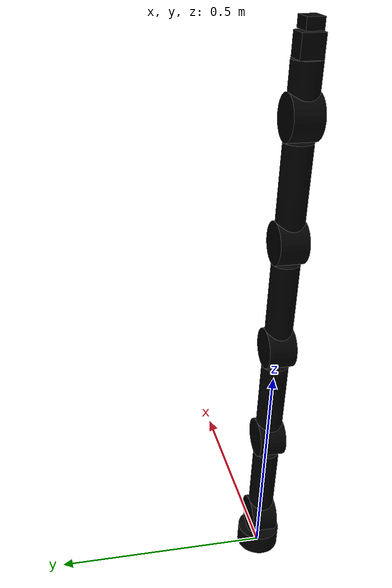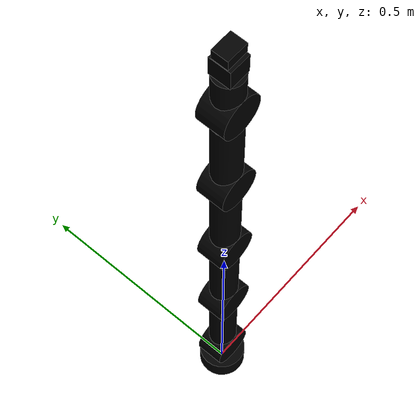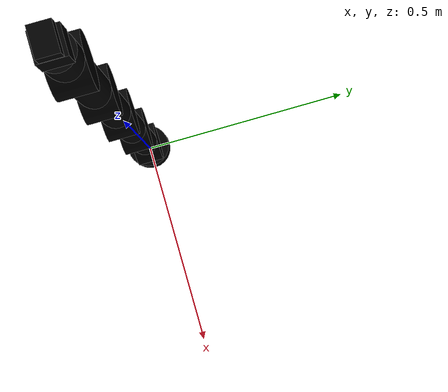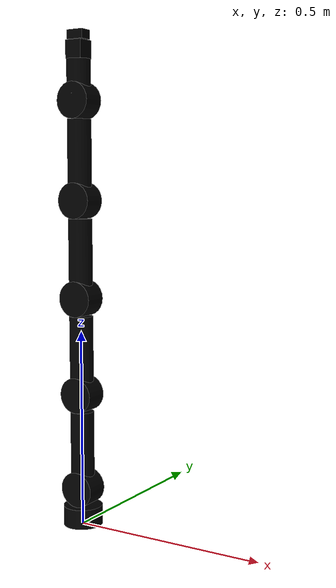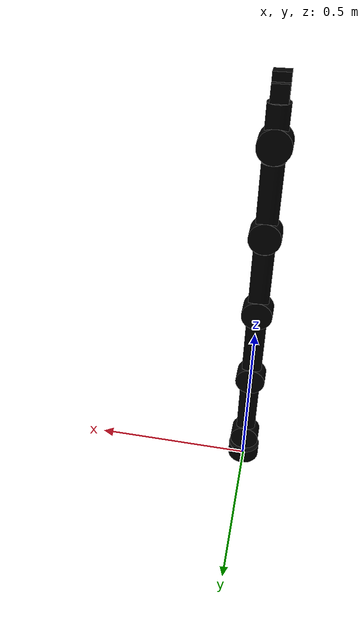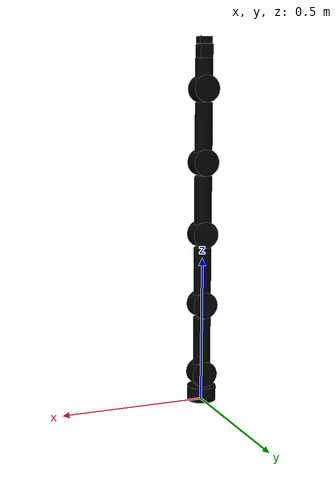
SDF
<?xml version='1.0'?>
<sdf version='1.6'>
  <model name='poke_arm_mod1'>
    <link name='p0_link_clone'>
      <pose frame=''>-0 -0 0.095 0 -0.000119 0</pose>
      <inertial>
        <pose frame=''>0 0 0.1 0 -0 0</pose>
        <mass>0.01</mass>
        <inertia>
          <ixx>0.0001</ixx>
          <ixy>0</ixy>
          <ixz>0</ixz>
          <iyy>0.0001</iyy>
          <iyz>0</iyz>
          <izz>0.0001</izz>
        </inertia>
      </inertial>
      <self_collide>0</self_collide>
      <enable_wind>0</enable_wind>
      <kinematic>0</kinematic>
      <gravity>1</gravity>
      <visual name='p0_link_fixed_joint_lump__p0_joint_v_visual'>
        <pose frame=''>0 0 0 1.57079 -0 0</pose>
        <geometry>
          <cylinder>
            <length>0.06</length>
            <radius>0.045</radius>
          </cylinder>
        </geometry>
        <transparency>0</transparency>
        <cast_shadows>1</cast_shadows>
        <material>
          <shader type='vertex'>
            <normal_map>__default__</normal_map>
          </shader>
          <script>
            <name>ModelPreview_5::p0_link_clone::p0_link_fixed_joint_lump__p0_joint_v_visual_MATERIAL_</name>
          </script>
          <ambient>0 0 0 1</ambient>
          <diffuse>0 0 0 1</diffuse>
          <specular>0 0 0 1</specular>
          <emissive>0 0 0 1</emissive>
        </material>
      </visual>
      <visual name='p0_link_fixed_joint_lump__p0_segmentL_v_visual_1'>
        <pose frame=''>0 0 0.1 0 -0 0</pose>
        <geometry>
          <cylinder>
            <length>0.2</length>
            <radius>0.03</radius>
          </cylinder>
        </geometry>
        <transparency>0</transparency>
        <cast_shadows>1</cast_shadows>
        <material>
          <shader type='vertex'>
            <normal_map>__default__</normal_map>
          </shader>
          <script>
            <name>ModelPreview_5::p0_link_clone::p0_link_fixed_joint_lump__p0_segmentL_v_visual_1_MATERIAL_</name>
          </script>
          <ambient>0 0 0 1</ambient>
          <diffuse>0 0 0 1</diffuse>
          <specular>0 0 0 1</specular>
          <emissive>0 0 0 1</emissive>
        </material>
      </visual>
      <collision name='p0_link_fixed_joint_lump__p0_joint_c_collision'>
        <laser_retro>0</laser_retro>
        <max_contacts>10</max_contacts>
        <pose frame=''>0 0 0 1.57079 -0 0</pose>
        <geometry>
          <cylinder>
            <radius>0.045</radius>
            <length>0.06</length>
          </cylinder>
        </geometry>
        <surface>
          <friction>
            <ode>
              <mu>1</mu>
              <mu2>1</mu2>
              <fdir1>0 0 0</fdir1>
              <slip1>0</slip1>
              <slip2>0</slip2>
            </ode>
            <torsional>
              <coefficient>1</coefficient>
              <patch_radius>0</patch_radius>
              <surface_radius>0</surface_radius>
              <use_patch_radius>1</use_patch_radius>
              <ode>
                <slip>0</slip>
              </ode>
            </torsional>
          </friction>
          <bounce>
            <restitution_coefficient>0</restitution_coefficient>
            <threshold>1e+06</threshold>
          </bounce>
          <contact>
            <collide_without_contact>0</collide_without_contact>
            <collide_without_contact_bitmask>1</collide_without_contact_bitmask>
            <collide_bitmask>1</collide_bitmask>
            <ode>
              <soft_cfm>0</soft_cfm>
              <soft_erp>0.2</soft_erp>
              <kp>1e+13</kp>
              <kd>1</kd>
              <max_vel>0.01</max_vel>
              <min_depth>0</min_depth>
            </ode>
            <bullet>
              <split_impulse>1</split_impulse>
              <split_impulse_penetration_threshold>-0.01</split_impulse_penetration_threshold>
              <soft_cfm>0</soft_cfm>
              <soft_erp>0.2</soft_erp>
              <kp>1e+13</kp>
              <kd>1</kd>
            </bullet>
          </contact>
        </surface>
      </collision>
      <collision name='p0_link_fixed_joint_lump__p0_segmentL_c_collision_1'>
        <laser_retro>0</laser_retro>
        <max_contacts>10</max_contacts>
        <pose frame=''>0 0 0.1 0 -0 0</pose>
        <geometry>
          <cylinder>
            <radius>0.03</radius>
            <length>0.2</length>
          </cylinder>
        </geometry>
        <surface>
          <friction>
            <ode>
              <mu>1</mu>
              <mu2>1</mu2>
              <fdir1>0 0 0</fdir1>
              <slip1>0</slip1>
              <slip2>0</slip2>
            </ode>
            <torsional>
              <coefficient>1</coefficient>
              <patch_radius>0</patch_radius>
              <surface_radius>0</surface_radius>
              <use_patch_radius>1</use_patch_radius>
              <ode>
                <slip>0</slip>
              </ode>
            </torsional>
          </friction>
          <bounce>
            <restitution_coefficient>0</restitution_coefficient>
            <threshold>1e+06</threshold>
          </bounce>
          <contact>
            <collide_without_contact>0</collide_without_contact>
            <collide_without_contact_bitmask>1</collide_without_contact_bitmask>
            <collide_bitmask>1</collide_bitmask>
            <ode>
              <soft_cfm>0</soft_cfm>
              <soft_erp>0.2</soft_erp>
              <kp>1e+13</kp>
              <kd>1</kd>
              <max_vel>0.01</max_vel>
              <min_depth>0</min_depth>
            </ode>
            <bullet>
              <split_impulse>1</split_impulse>
              <split_impulse_penetration_threshold>-0.01</split_impulse_penetration_threshold>
              <soft_cfm>0</soft_cfm>
              <soft_erp>0.2</soft_erp>
              <kp>1e+13</kp>
              <kd>1</kd>
            </bullet>
          </contact>
        </surface>
      </collision>
    </link>
    <link name='p1_link_clone'>
      <pose frame=''>0 -0 0.34 0 -0.000119 0</pose>
      <inertial>
        <pose frame=''>0 0 0.1 0 -0 0</pose>
        <mass>0.01</mass>
        <inertia>
          <ixx>0.0001</ixx>
          <ixy>0</ixy>
          <ixz>0</ixz>
          <iyy>0.0001</iyy>
          <iyz>0</iyz>
          <izz>0.0001</izz>
        </inertia>
      </inertial>
      <self_collide>0</self_collide>
      <enable_wind>0</enable_wind>
      <kinematic>0</kinematic>
      <gravity>1</gravity>
      <visual name='p1_link_fixed_joint_lump__p1_joint_v_visual'>
        <pose frame=''>0 0 0 1.57079 -0 0</pose>
        <geometry>
          <cylinder>
            <length>0.06</length>
            <radius>0.045</radius>
          </cylinder>
        </geometry>
        <transparency>0</transparency>
        <cast_shadows>1</cast_shadows>
        <material>
          <shader type='vertex'>
            <normal_map>__default__</normal_map>
          </shader>
          <script>
            <name>ModelPreview_5::p1_link_clone::p1_link_fixed_joint_lump__p1_joint_v_visual_MATERIAL_</name>
          </script>
          <ambient>0 0 0 1</ambient>
          <diffuse>0 0 0 1</diffuse>
          <specular>0 0 0 1</specular>
          <emissive>0 0 0 1</emissive>
        </material>
      </visual>
      <visual name='p1_link_fixed_joint_lump__p1_segmentL_v_visual_1'>
        <pose frame=''>0 0 0.1 0 -0 0</pose>
        <geometry>
          <cylinder>
            <length>0.2</length>
            <radius>0.03</radius>
          </cylinder>
        </geometry>
        <transparency>0</transparency>
        <cast_shadows>1</cast_shadows>
        <material>
          <shader type='vertex'>
            <normal_map>__default__</normal_map>
          </shader>
          <script>
            <name>ModelPreview_5::p1_link_clone::p1_link_fixed_joint_lump__p1_segmentL_v_visual_1_MATERIAL_</name>
          </script>
          <ambient>0 0 0 1</ambient>
          <diffuse>0 0 0 1</diffuse>
          <specular>0 0 0 1</specular>
          <emissive>0 0 0 1</emissive>
        </material>
      </visual>
      <collision name='p1_link_fixed_joint_lump__p1_joint_c_collision'>
        <laser_retro>0</laser_retro>
        <max_contacts>10</max_contacts>
        <pose frame=''>0 0 0 1.57079 -0 0</pose>
        <geometry>
          <cylinder>
            <radius>0.045</radius>
            <length>0.06</length>
          </cylinder>
        </geometry>
        <surface>
          <friction>
            <ode>
              <mu>1</mu>
              <mu2>1</mu2>
              <fdir1>0 0 0</fdir1>
              <slip1>0</slip1>
              <slip2>0</slip2>
            </ode>
            <torsional>
              <coefficient>1</coefficient>
              <patch_radius>0</patch_radius>
              <surface_radius>0</surface_radius>
              <use_patch_radius>1</use_patch_radius>
              <ode>
                <slip>0</slip>
              </ode>
            </torsional>
          </friction>
          <bounce>
            <restitution_coefficient>0</restitution_coefficient>
            <threshold>1e+06</threshold>
          </bounce>
          <contact>
            <collide_without_contact>0</collide_without_contact>
            <collide_without_contact_bitmask>1</collide_without_contact_bitmask>
            <collide_bitmask>1</collide_bitmask>
            <ode>
              <soft_cfm>0</soft_cfm>
              <soft_erp>0.2</soft_erp>
              <kp>1e+13</kp>
              <kd>1</kd>
              <max_vel>0.01</max_vel>
              <min_depth>0</min_depth>
            </ode>
            <bullet>
              <split_impulse>1</split_impulse>
              <split_impulse_penetration_threshold>-0.01</split_impulse_penetration_threshold>
              <soft_cfm>0</soft_cfm>
              <soft_erp>0.2</soft_erp>
              <kp>1e+13</kp>
              <kd>1</kd>
            </bullet>
          </contact>
        </surface>
      </collision>
      <collision name='p1_link_fixed_joint_lump__p1_segmentL_c_collision_1'>
        <laser_retro>0</laser_retro>
        <max_contacts>10</max_contacts>
        <pose frame=''>0 0 0.1 0 -0 0</pose>
        <geometry>
          <cylinder>
            <radius>0.03</radius>
            <length>0.2</length>
          </cylinder>
        </geometry>
        <surface>
          <friction>
            <ode>
              <mu>1</mu>
              <mu2>1</mu2>
              <fdir1>0 0 0</fdir1>
              <slip1>0</slip1>
              <slip2>0</slip2>
            </ode>
            <torsional>
              <coefficient>1</coefficient>
              <patch_radius>0</patch_radius>
              <surface_radius>0</surface_radius>
              <use_patch_radius>1</use_patch_radius>
              <ode>
                <slip>0</slip>
              </ode>
            </torsional>
          </friction>
          <bounce>
            <restitution_coefficient>0</restitution_coefficient>
            <threshold>1e+06</threshold>
          </bounce>
          <contact>
            <collide_without_contact>0</collide_without_contact>
            <collide_without_contact_bitmask>1</collide_without_contact_bitmask>
            <collide_bitmask>1</collide_bitmask>
            <ode>
              <soft_cfm>0</soft_cfm>
              <soft_erp>0.2</soft_erp>
              <kp>1e+13</kp>
              <kd>1</kd>
              <max_vel>0.01</max_vel>
              <min_depth>0</min_depth>
            </ode>
            <bullet>
              <split_impulse>1</split_impulse>
              <split_impulse_penetration_threshold>-0.01</split_impulse_penetration_threshold>
              <soft_cfm>0</soft_cfm>
              <soft_erp>0.2</soft_erp>
              <kp>1e+13</kp>
              <kd>1</kd>
            </bullet>
          </contact>
        </surface>
      </collision>
    </link>
    <link name='p1_link_clone_clone'>
      <pose frame=''>0 -0 0.585 0 -0.000238 0</pose>
      <inertial>
        <pose frame=''>0 0 0.1 0 -0 0</pose>
        <mass>0.01</mass>
        <inertia>
          <ixx>0.0001</ixx>
          <ixy>0</ixy>
          <ixz>0</ixz>
          <iyy>0.0001</iyy>
          <iyz>0</iyz>
          <izz>0.0001</izz>
        </inertia>
      </inertial>
      <self_collide>0</self_collide>
      <enable_wind>0</enable_wind>
      <kinematic>0</kinematic>
      <gravity>1</gravity>
      <visual name='p1_link_fixed_joint_lump__p1_joint_v_visual'>
        <pose frame=''>0 0 0 1.57079 -0 0</pose>
        <geometry>
          <cylinder>
            <length>0.06</length>
            <radius>0.045</radius>
          </cylinder>
        </geometry>
        <transparency>0</transparency>
        <cast_shadows>1</cast_shadows>
        <material>
          <shader type='vertex'>
            <normal_map>__default__</normal_map>
          </shader>
          <script>
            <name>ModelPreview_5::p1_link_clone::p1_link_fixed_joint_lump__p1_joint_v_visual_MATERIAL_</name>
            <uri>__default__</uri>
          </script>
          <ambient>0 0 0 1</ambient>
          <diffuse>0 0 0 1</diffuse>
          <specular>0 0 0 1</specular>
          <emissive>0 0 0 1</emissive>
        </material>
      </visual>
      <visual name='p1_link_fixed_joint_lump__p1_segmentL_v_visual_1'>
        <pose frame=''>0 0 0.1 0 -0 0</pose>
        <geometry>
          <cylinder>
            <length>0.2</length>
            <radius>0.03</radius>
          </cylinder>
        </geometry>
        <transparency>0</transparency>
        <cast_shadows>1</cast_shadows>
        <material>
          <shader type='vertex'>
            <normal_map>__default__</normal_map>
          </shader>
          <script>
            <name>ModelPreview_5::p1_link_clone::p1_link_fixed_joint_lump__p1_segmentL_v_visual_1_MATERIAL_</name>
            <uri>__default__</uri>
          </script>
          <ambient>0 0 0 1</ambient>
          <diffuse>0 0 0 1</diffuse>
          <specular>0 0 0 1</specular>
          <emissive>0 0 0 1</emissive>
        </material>
      </visual>
      <collision name='p1_link_fixed_joint_lump__p1_joint_c_collision'>
        <laser_retro>0</laser_retro>
        <max_contacts>10</max_contacts>
        <pose frame=''>0 0 0 1.57079 -0 0</pose>
        <geometry>
          <cylinder>
            <radius>0.045</radius>
            <length>0.06</length>
          </cylinder>
        </geometry>
        <surface>
          <friction>
            <ode>
              <mu>1</mu>
              <mu2>1</mu2>
              <fdir1>0 0 0</fdir1>
              <slip1>0</slip1>
              <slip2>0</slip2>
            </ode>
            <torsional>
              <coefficient>1</coefficient>
              <patch_radius>0</patch_radius>
              <surface_radius>0</surface_radius>
              <use_patch_radius>1</use_patch_radius>
              <ode>
                <slip>0</slip>
              </ode>
            </torsional>
          </friction>
          <bounce>
            <restitution_coefficient>0</restitution_coefficient>
            <threshold>1e+06</threshold>
          </bounce>
          <contact>
            <collide_without_contact>0</collide_without_contact>
            <collide_without_contact_bitmask>1</collide_without_contact_bitmask>
            <collide_bitmask>1</collide_bitmask>
            <ode>
              <soft_cfm>0</soft_cfm>
              <soft_erp>0.2</soft_erp>
              <kp>1e+13</kp>
              <kd>1</kd>
              <max_vel>0.01</max_vel>
              <min_depth>0</min_depth>
            </ode>
            <bullet>
              <split_impulse>1</split_impulse>
              <split_impulse_penetration_threshold>-0.01</split_impulse_penetration_threshold>
              <soft_cfm>0</soft_cfm>
              <soft_erp>0.2</soft_erp>
              <kp>1e+13</kp>
              <kd>1</kd>
            </bullet>
          </contact>
        </surface>
      </collision>
      <collision name='p1_link_fixed_joint_lump__p1_segmentL_c_collision_1'>
        <laser_retro>0</laser_retro>
        <max_contacts>10</max_contacts>
        <pose frame=''>0 0 0.1 0 -0 0</pose>
        <geometry>
          <cylinder>
            <radius>0.03</radius>
            <length>0.2</length>
          </cylinder>
        </geometry>
        <surface>
          <friction>
            <ode>
              <mu>1</mu>
              <mu2>1</mu2>
              <fdir1>0 0 0</fdir1>
              <slip1>0</slip1>
              <slip2>0</slip2>
            </ode>
            <torsional>
              <coefficient>1</coefficient>
              <patch_radius>0</patch_radius>
              <surface_radius>0</surface_radius>
              <use_patch_radius>1</use_patch_radius>
              <ode>
                <slip>0</slip>
              </ode>
            </torsional>
          </friction>
          <bounce>
            <restitution_coefficient>0</restitution_coefficient>
            <threshold>1e+06</threshold>
          </bounce>
          <contact>
            <collide_without_contact>0</collide_without_contact>
            <collide_without_contact_bitmask>1</collide_without_contact_bitmask>
            <collide_bitmask>1</collide_bitmask>
            <ode>
              <soft_cfm>0</soft_cfm>
              <soft_erp>0.2</soft_erp>
              <kp>1e+13</kp>
              <kd>1</kd>
              <max_vel>0.01</max_vel>
              <min_depth>0</min_depth>
            </ode>
            <bullet>
              <split_impulse>1</split_impulse>
              <split_impulse_penetration_threshold>-0.01</split_impulse_penetration_threshold>
              <soft_cfm>0</soft_cfm>
              <soft_erp>0.2</soft_erp>
              <kp>1e+13</kp>
              <kd>1</kd>
            </bullet>
          </contact>
        </surface>
      </collision>
    </link>
    <link name='p1_link_clone_clone_clone'>
      <pose frame=''>0 -0 0.83 0 -0.000357 0</pose>
      <inertial>
        <pose frame=''>0 0 0.1 0 -0 0</pose>
        <mass>0.01</mass>
        <inertia>
          <ixx>0.0001</ixx>
          <ixy>0</ixy>
          <ixz>0</ixz>
          <iyy>0.0001</iyy>
          <iyz>0</iyz>
          <izz>0.0001</izz>
        </inertia>
      </inertial>
      <self_collide>0</self_collide>
      <enable_wind>0</enable_wind>
      <kinematic>0</kinematic>
      <gravity>1</gravity>
      <visual name='p1_link_fixed_joint_lump__p1_joint_v_visual'>
        <pose frame=''>0 0 0 1.57079 -0 0</pose>
        <geometry>
          <cylinder>
            <length>0.06</length>
            <radius>0.045</radius>
          </cylinder>
        </geometry>
        <transparency>0</transparency>
        <cast_shadows>1</cast_shadows>
        <material>
          <shader type='vertex'>
            <normal_map>__default__</normal_map>
          </shader>
          <script>
            <name>ModelPreview_5::p1_link_clone::p1_link_fixed_joint_lump__p1_joint_v_visual_MATERIAL_</name>
            <uri>__default__</uri>
          </script>
          <ambient>0 0 0 1</ambient>
          <diffuse>0 0 0 1</diffuse>
          <specular>0 0 0 1</specular>
          <emissive>0 0 0 1</emissive>
        </material>
      </visual>
      <visual name='p1_link_fixed_joint_lump__p1_segmentL_v_visual_1'>
        <pose frame=''>0 0 0.1 0 -0 0</pose>
        <geometry>
          <cylinder>
            <length>0.2</length>
            <radius>0.03</radius>
          </cylinder>
        </geometry>
        <transparency>0</transparency>
        <cast_shadows>1</cast_shadows>
        <material>
          <shader type='vertex'>
            <normal_map>__default__</normal_map>
          </shader>
          <script>
            <name>ModelPreview_5::p1_link_clone::p1_link_fixed_joint_lump__p1_segmentL_v_visual_1_MATERIAL_</name>
            <uri>__default__</uri>
          </script>
          <ambient>0 0 0 1</ambient>
          <diffuse>0 0 0 1</diffuse>
          <specular>0 0 0 1</specular>
          <emissive>0 0 0 1</emissive>
        </material>
      </visual>
      <collision name='p1_link_fixed_joint_lump__p1_joint_c_collision'>
        <laser_retro>0</laser_retro>
        <max_contacts>10</max_contacts>
        <pose frame=''>0 0 0 1.57079 -0 0</pose>
        <geometry>
          <cylinder>
            <radius>0.045</radius>
            <length>0.06</length>
          </cylinder>
        </geometry>
        <surface>
          <friction>
            <ode>
              <mu>1</mu>
              <mu2>1</mu2>
              <fdir1>0 0 0</fdir1>
              <slip1>0</slip1>
              <slip2>0</slip2>
            </ode>
            <torsional>
              <coefficient>1</coefficient>
              <patch_radius>0</patch_radius>
              <surface_radius>0</surface_radius>
              <use_patch_radius>1</use_patch_radius>
              <ode>
                <slip>0</slip>
              </ode>
            </torsional>
          </friction>
          <bounce>
            <restitution_coefficient>0</restitution_coefficient>
            <threshold>1e+06</threshold>
          </bounce>
          <contact>
            <collide_without_contact>0</collide_without_contact>
            <collide_without_contact_bitmask>1</collide_without_contact_bitmask>
            <collide_bitmask>1</collide_bitmask>
            <ode>
              <soft_cfm>0</soft_cfm>
              <soft_erp>0.2</soft_erp>
              <kp>1e+13</kp>
              <kd>1</kd>
              <max_vel>0.01</max_vel>
              <min_depth>0</min_depth>
            </ode>
            <bullet>
              <split_impulse>1</split_impulse>
              <split_impulse_penetration_threshold>-0.01</split_impulse_penetration_threshold>
              <soft_cfm>0</soft_cfm>
              <soft_erp>0.2</soft_erp>
              <kp>1e+13</kp>
              <kd>1</kd>
            </bullet>
          </contact>
        </surface>
      </collision>
      <collision name='p1_link_fixed_joint_lump__p1_segmentL_c_collision_1'>
        <laser_retro>0</laser_retro>
        <max_contacts>10</max_contacts>
        <pose frame=''>0 0 0.1 0 -0 0</pose>
        <geometry>
          <cylinder>
            <radius>0.03</radius>
            <length>0.2</length>
          </cylinder>
        </geometry>
        <surface>
          <friction>
            <ode>
              <mu>1</mu>
              <mu2>1</mu2>
              <fdir1>0 0 0</fdir1>
              <slip1>0</slip1>
              <slip2>0</slip2>
            </ode>
            <torsional>
              <coefficient>1</coefficient>
              <patch_radius>0</patch_radius>
              <surface_radius>0</surface_radius>
              <use_patch_radius>1</use_patch_radius>
              <ode>
                <slip>0</slip>
              </ode>
            </torsional>
          </friction>
          <bounce>
            <restitution_coefficient>0</restitution_coefficient>
            <threshold>1e+06</threshold>
          </bounce>
          <contact>
            <collide_without_contact>0</collide_without_contact>
            <collide_without_contact_bitmask>1</collide_without_contact_bitmask>
            <collide_bitmask>1</collide_bitmask>
            <ode>
              <soft_cfm>0</soft_cfm>
              <soft_erp>0.2</soft_erp>
              <kp>1e+13</kp>
              <kd>1</kd>
              <max_vel>0.01</max_vel>
              <min_depth>0</min_depth>
            </ode>
            <bullet>
              <split_impulse>1</split_impulse>
              <split_impulse_penetration_threshold>-0.01</split_impulse_penetration_threshold>
              <soft_cfm>0</soft_cfm>
              <soft_erp>0.2</soft_erp>
              <kp>1e+13</kp>
              <kd>1</kd>
            </bullet>
          </contact>
        </surface>
      </collision>
    </link>
    <link name='p2_link_clone'>
      <pose frame=''>-0 -0 1.075 0 -0.000119 0</pose>
      <inertial>
        <pose frame=''>0 0 0.05 0 -0 0</pose>
        <mass>0.01</mass>
        <inertia>
          <ixx>0.0001</ixx>
          <ixy>0</ixy>
          <ixz>0</ixz>
          <iyy>0.0001</iyy>
          <iyz>0</iyz>
          <izz>0.0001</izz>
        </inertia>
      </inertial>
      <self_collide>0</self_collide>
      <enable_wind>0</enable_wind>
      <kinematic>0</kinematic>
      <gravity>1</gravity>
      <visual name='p2_link_fixed_joint_lump__p2_joint_v_visual'>
        <pose frame=''>0 0 0 1.57079 -0 0</pose>
        <geometry>
          <cylinder>
            <length>0.06</length>
            <radius>0.045</radius>
          </cylinder>
        </geometry>
        <transparency>0</transparency>
        <cast_shadows>1</cast_shadows>
        <material>
          <shader type='vertex'>
            <normal_map>__default__</normal_map>
          </shader>
          <script>
            <name>ModelPreview_5::p2_link_clone::p2_link_fixed_joint_lump__p2_joint_v_visual_MATERIAL_</name>
          </script>
          <ambient>0 0 0 1</ambient>
          <diffuse>0 0 0 1</diffuse>
          <specular>0 0 0 1</specular>
          <emissive>0 0 0 1</emissive>
        </material>
      </visual>
      <visual name='p2_link_fixed_joint_lump__p2_segmentS_v_visual_1'>
        <pose frame=''>0 0 0.05 0 -0 0</pose>
        <geometry>
          <cylinder>
            <length>0.1</length>
            <radius>0.03</radius>
          </cylinder>
        </geometry>
        <transparency>0</transparency>
        <cast_shadows>1</cast_shadows>
        <material>
          <shader type='vertex'>
            <normal_map>__default__</normal_map>
          </shader>
          <script>
            <name>ModelPreview_5::p2_link_clone::p2_link_fixed_joint_lump__p2_segmentS_v_visual_1_MATERIAL_</name>
          </script>
          <ambient>0 0 0 1</ambient>
          <diffuse>0 0 0 1</diffuse>
          <specular>0 0 0 1</specular>
          <emissive>0 0 0 1</emissive>
        </material>
      </visual>
      <collision name='p2_link_fixed_joint_lump__p2_segmentS_c_collision_1'>
        <laser_retro>0</laser_retro>
        <max_contacts>10</max_contacts>
        <pose frame=''>0 0 0.05 0 -0 0</pose>
        <geometry>
          <cylinder>
            <radius>0.03</radius>
            <length>0.1</length>
          </cylinder>
        </geometry>
        <surface>
          <friction>
            <ode>
              <mu>1</mu>
              <mu2>1</mu2>
              <fdir1>0 0 0</fdir1>
              <slip1>0</slip1>
              <slip2>0</slip2>
            </ode>
            <torsional>
              <coefficient>1</coefficient>
              <patch_radius>0</patch_radius>
              <surface_radius>0</surface_radius>
              <use_patch_radius>1</use_patch_radius>
              <ode>
                <slip>0</slip>
              </ode>
            </torsional>
          </friction>
          <bounce>
            <restitution_coefficient>0</restitution_coefficient>
            <threshold>1e+06</threshold>
          </bounce>
          <contact>
            <collide_without_contact>0</collide_without_contact>
            <collide_without_contact_bitmask>1</collide_without_contact_bitmask>
            <collide_bitmask>1</collide_bitmask>
            <ode>
              <soft_cfm>0</soft_cfm>
              <soft_erp>0.2</soft_erp>
              <kp>1e+13</kp>
              <kd>1</kd>
              <max_vel>0.01</max_vel>
              <min_depth>0</min_depth>
            </ode>
            <bullet>
              <split_impulse>1</split_impulse>
              <split_impulse_penetration_threshold>-0.01</split_impulse_penetration_threshold>
              <soft_cfm>0</soft_cfm>
              <soft_erp>0.2</soft_erp>
              <kp>1e+13</kp>
              <kd>1</kd>
            </bullet>
          </contact>
        </surface>
      </collision>
      <collision name='p2_link_fixed_joint_lump__p2_joint_c_collision'>
        <laser_retro>0</laser_retro>
        <max_contacts>10</max_contacts>
        <pose frame=''>0 0 0 1.57079 -0 0</pose>
        <geometry>
          <cylinder>
            <radius>0.045</radius>
            <length>0.06</length>
          </cylinder>
        </geometry>
        <surface>
          <friction>
            <ode>
              <mu>1</mu>
              <mu2>1</mu2>
              <fdir1>0 0 0</fdir1>
              <slip1>0</slip1>
              <slip2>0</slip2>
            </ode>
            <torsional>
              <coefficient>1</coefficient>
              <patch_radius>0</patch_radius>
              <surface_radius>0</surface_radius>
              <use_patch_radius>1</use_patch_radius>
              <ode>
                <slip>0</slip>
              </ode>
            </torsional>
          </friction>
          <bounce>
            <restitution_coefficient>0</restitution_coefficient>
            <threshold>1e+06</threshold>
          </bounce>
          <contact>
            <collide_without_contact>0</collide_without_contact>
            <collide_without_contact_bitmask>1</collide_without_contact_bitmask>
            <collide_bitmask>1</collide_bitmask>
            <ode>
              <soft_cfm>0</soft_cfm>
              <soft_erp>0.2</soft_erp>
              <kp>1e+13</kp>
              <kd>1</kd>
              <max_vel>0.01</max_vel>
              <min_depth>0</min_depth>
            </ode>
            <bullet>
              <split_impulse>1</split_impulse>
              <split_impulse_penetration_threshold>-0.01</split_impulse_penetration_threshold>
              <soft_cfm>0</soft_cfm>
              <soft_erp>0.2</soft_erp>
              <kp>1e+13</kp>
              <kd>1</kd>
            </bullet>
          </contact>
        </surface>
      </collision>
    </link>
    <link name='p3_link_clone'>
      <pose frame=''>-0 -0 1.1975 0 -0.000119 0</pose>
      <inertial>
        <pose frame=''>0 0 0.018 0 -0 0</pose>
        <mass>0.02</mass>
        <inertia>
          <ixx>0.00010748</ixx>
          <ixy>0</ixy>
          <ixz>0</ixz>
          <iyy>0.00010748</iyy>
          <iyz>0</iyz>
          <izz>0.000101</izz>
        </inertia>
      </inertial>
      <gravity>1</gravity>
      <velocity_decay/>
      <sensor name='camera' type='depth'>
        <always_on>1</always_on>
        <update_rate>20</update_rate>
        <camera name='__default__'>
          <horizontal_fov>1.0472</horizontal_fov>
          <image>
            <format>B8G8R8</format>
            <width>320</width>
            <height>240</height>
          </image>
          <clip>
            <near>0.01</near>
            <far>18</far>
          </clip>
        </camera>
        <plugin name='kinect_camera_controller' filename='libgazebo_ros_openni_kinect.so'>
          <cameraName>cameraB</cameraName>
          <alwaysOn>1</alwaysOn>
          <updateRate>10</updateRate>
          <imageTopicName>rgb/image_raw</imageTopicName>
          <depthImageTopicName>depth/image_raw</depthImageTopicName>
          <pointCloudTopicName>depth/points</pointCloudTopicName>
          <cameraInfoTopicName>rgb/camera_info</cameraInfoTopicName>
          <depthImageCameraInfoTopicName>depth/camera_info</depthImageCameraInfoTopicName>
          <frameName>cameraB_depth_optical_frame</frameName>
          <baseline>0.1</baseline>
          <distortion_k1>0.0</distortion_k1>
          <distortion_k2>0.0</distortion_k2>
          <distortion_k3>0.0</distortion_k3>
          <distortion_t1>0.0</distortion_t1>
          <distortion_t2>0.0</distortion_t2>
          <pointCloudCutoff>0.4</pointCloudCutoff>
          <robotNamespace>/</robotNamespace>
        </plugin>
        <pose frame=''>0 0 0.036 3.14159 -1.57079 3.14159</pose>
      </sensor>
      <self_collide>0</self_collide>
      <enable_wind>0</enable_wind>
      <kinematic>0</kinematic>
      <visual name='p3_link_fixed_joint_lump__p3_cSeg_v_visual'>
        <pose frame=''>0 0 0 0 -0 0</pose>
        <geometry>
          <box>
            <size>0.045 0.045 0.045</size>
          </box>
        </geometry>
        <transparency>0</transparency>
        <cast_shadows>1</cast_shadows>
        <material>
          <shader type='vertex'>
            <normal_map>__default__</normal_map>
          </shader>
          <script>
            <name>ModelPreview_5::p3_link_clone::p3_link_fixed_joint_lump__p3_cSeg_v_visual_MATERIAL_</name>
          </script>
          <ambient>0 0 0 1</ambient>
          <diffuse>0 0 0 1</diffuse>
          <specular>0 0 0 1</specular>
          <emissive>0 0 0 1</emissive>
        </material>
      </visual>
      <visual name='p3_link_fixed_joint_lump__cameraB_cam_visual_1'>
        <pose frame=''>0 0 0.036 3.14159 -1.57079 3.14159</pose>
        <geometry>
          <box>
            <size>0.0225 0.03375 0.045</size>
          </box>
        </geometry>
        <material>
          <script>
            <uri>__default__</uri>
            <name>ModelPreview_5::p3_link_clone::p3_link_fixed_joint_lump__cameraB_cam_visual_1_MATERIAL_</name>
          </script>
          <shader type='vertex'>
            <normal_map>__default__</normal_map>
          </shader>
          <ambient>0 0 0 1</ambient>
          <diffuse>0 0 0 1</diffuse>
          <specular>0 0 0 1</specular>
          <emissive>0 0 0 1</emissive>
        </material>
        <transparency>0</transparency>
        <cast_shadows>1</cast_shadows>
      </visual>
      <collision name='p3_link_fixed_joint_lump__p3_cSeg_c_collision'>
        <laser_retro>0</laser_retro>
        <max_contacts>10</max_contacts>
        <pose frame=''>0 0 0 0 -0 0</pose>
        <geometry>
          <box>
            <size>0.045 0.045 0.045</size>
          </box>
        </geometry>
        <surface>
          <friction>
            <ode>
              <mu>1</mu>
              <mu2>1</mu2>
              <fdir1>0 0 0</fdir1>
              <slip1>0</slip1>
              <slip2>0</slip2>
            </ode>
            <torsional>
              <coefficient>1</coefficient>
              <patch_radius>0</patch_radius>
              <surface_radius>0</surface_radius>
              <use_patch_radius>1</use_patch_radius>
              <ode>
                <slip>0</slip>
              </ode>
            </torsional>
          </friction>
          <bounce>
            <restitution_coefficient>0</restitution_coefficient>
            <threshold>1e+06</threshold>
          </bounce>
          <contact>
            <collide_without_contact>0</collide_without_contact>
            <collide_without_contact_bitmask>1</collide_without_contact_bitmask>
            <collide_bitmask>1</collide_bitmask>
            <ode>
              <soft_cfm>0</soft_cfm>
              <soft_erp>0.2</soft_erp>
              <kp>1e+13</kp>
              <kd>1</kd>
              <max_vel>0.01</max_vel>
              <min_depth>0</min_depth>
            </ode>
            <bullet>
              <split_impulse>1</split_impulse>
              <split_impulse_penetration_threshold>-0.01</split_impulse_penetration_threshold>
              <soft_cfm>0</soft_cfm>
              <soft_erp>0.2</soft_erp>
              <kp>1e+13</kp>
              <kd>1</kd>
            </bullet>
          </contact>
        </surface>
      </collision>
      <collision name='p3_link_fixed_joint_lump__cameraB_cam_collision_1'>
        <laser_retro>0</laser_retro>
        <max_contacts>10</max_contacts>
        <pose frame=''>0 0 0.036 3.14159 -1.57079 3.14159</pose>
        <geometry>
          <box>
            <size>0.0225 0.03375 0.045</size>
          </box>
        </geometry>
        <surface>
          <friction>
            <ode>
              <mu>1</mu>
              <mu2>1</mu2>
              <fdir1>0 0 0</fdir1>
              <slip1>0</slip1>
              <slip2>0</slip2>
            </ode>
            <torsional>
              <coefficient>1</coefficient>
              <patch_radius>0</patch_radius>
              <surface_radius>0</surface_radius>
              <use_patch_radius>1</use_patch_radius>
              <ode>
                <slip>0</slip>
              </ode>
            </torsional>
          </friction>
          <bounce>
            <restitution_coefficient>0</restitution_coefficient>
            <threshold>1e+06</threshold>
          </bounce>
          <contact>
            <collide_without_contact>0</collide_without_contact>
            <collide_without_contact_bitmask>1</collide_without_contact_bitmask>
            <collide_bitmask>1</collide_bitmask>
            <ode>
              <soft_cfm>0</soft_cfm>
              <soft_erp>0.2</soft_erp>
              <kp>1e+13</kp>
              <kd>1</kd>
              <max_vel>0.01</max_vel>
              <min_depth>0</min_depth>
            </ode>
            <bullet>
              <split_impulse>1</split_impulse>
              <split_impulse_penetration_threshold>-0.01</split_impulse_penetration_threshold>
              <soft_cfm>0</soft_cfm>
              <soft_erp>0.2</soft_erp>
              <kp>1e+13</kp>
              <kd>1</kd>
            </bullet>
          </contact>
        </surface>
      </collision>
    </link>
    <link name='poke_base_link_clone'>
      <pose frame=''>0 0 0 0 -0.000119 0</pose>
      <inertial>
        <pose frame=''>0 0 0.025 0 -0 0</pose>
        <mass>0.01</mass>
        <inertia>
          <ixx>0.0001</ixx>
          <ixy>0</ixy>
          <ixz>0</ixz>
          <iyy>0.0001</iyy>
          <iyz>0</iyz>
          <izz>0.0001</izz>
        </inertia>
      </inertial>
      <self_collide>0</self_collide>
      <enable_wind>0</enable_wind>
      <kinematic>0</kinematic>
      <gravity>1</gravity>
      <visual name='poke_base_link_fixed_joint_lump__baseMount_link_visual'>
        <pose frame=''>0 0 0.025 0 -0 0</pose>
        <geometry>
          <cylinder>
            <length>0.05</length>
            <radius>0.05</radius>
          </cylinder>
        </geometry>
        <transparency>0</transparency>
        <cast_shadows>1</cast_shadows>
        <material>
          <shader type='vertex'>
            <normal_map>__default__</normal_map>
          </shader>
          <script>
            <name>ModelPreview_5::poke_base_link_clone::poke_base_link_fixed_joint_lump__baseMount_link_visual_MATERIAL_</name>
          </script>
          <ambient>0 0 0 1</ambient>
          <diffuse>0 0 0 1</diffuse>
          <specular>0 0 0 1</specular>
          <emissive>0 0 0 1</emissive>
        </material>
      </visual>
      <collision name='poke_base_link_fixed_joint_lump__baseMount_link_collision'>
        <laser_retro>0</laser_retro>
        <max_contacts>10</max_contacts>
        <pose frame=''>0 0 0.025 0 -0 0</pose>
        <geometry>
          <cylinder>
            <radius>0.05</radius>
            <length>0.05</length>
          </cylinder>
        </geometry>
        <surface>
          <friction>
            <ode>
              <mu>1</mu>
              <mu2>1</mu2>
              <fdir1>0 0 0</fdir1>
              <slip1>0</slip1>
              <slip2>0</slip2>
            </ode>
            <torsional>
              <coefficient>1</coefficient>
              <patch_radius>0</patch_radius>
              <surface_radius>0</surface_radius>
              <use_patch_radius>1</use_patch_radius>
              <ode>
                <slip>0</slip>
              </ode>
            </torsional>
          </friction>
          <bounce>
            <restitution_coefficient>0</restitution_coefficient>
            <threshold>1e+06</threshold>
          </bounce>
          <contact>
            <collide_without_contact>0</collide_without_contact>
            <collide_without_contact_bitmask>1</collide_without_contact_bitmask>
            <collide_bitmask>1</collide_bitmask>
            <ode>
              <soft_cfm>0</soft_cfm>
              <soft_erp>0.2</soft_erp>
              <kp>1e+13</kp>
              <kd>1</kd>
              <max_vel>0.01</max_vel>
              <min_depth>0</min_depth>
            </ode>
            <bullet>
              <split_impulse>1</split_impulse>
              <split_impulse_penetration_threshold>-0.01</split_impulse_penetration_threshold>
              <soft_cfm>0</soft_cfm>
              <soft_erp>0.2</soft_erp>
              <kp>1e+13</kp>
              <kd>1</kd>
            </bullet>
          </contact>
        </surface>
      </collision>
    </link>
    <joint name='p0_link_clone_JOINT_2' type='revolute'>
      <parent>p0_link_clone</parent>
      <child>p1_link_clone</child>
      <pose frame=''>0 0 0 0 -0 0</pose>
      <axis>
        <xyz>0 1 0</xyz>
        <use_parent_model_frame>0</use_parent_model_frame>
        <limit>
          <lower>0</lower>
          <upper>2.09439</upper>
          <effort>60</effort>
          <velocity>5</velocity>
        </limit>
        <dynamics>
          <spring_reference>0</spring_reference>
          <spring_stiffness>0</spring_stiffness>
          <damping>0</damping>
          <friction>0</friction>
        </dynamics>
      </axis>
      <physics>
        <ode>
          <limit>
            <cfm>0</cfm>
            <erp>0.2</erp>
          </limit>
          <suspension>
            <cfm>0</cfm>
            <erp>0.2</erp>
          </suspension>
        </ode>
      </physics>
    </joint>
    <joint name='p1_link_clone_JOINT_5' type='revolute'>
      <parent>p1_link_clone</parent>
      <child>p1_link_clone_clone</child>
      <pose frame=''>0 0 0 0 -0 0</pose>
      <axis>
        <xyz>0 1 0</xyz>
        <use_parent_model_frame>0</use_parent_model_frame>
        <limit>
          <lower>-2.09439</lower>
          <upper>2.09439</upper>
          <effort>60</effort>
          <velocity>5</velocity>
        </limit>
        <dynamics>
          <spring_reference>0</spring_reference>
          <spring_stiffness>0</spring_stiffness>
          <damping>0</damping>
          <friction>0</friction>
        </dynamics>
      </axis>
      <physics>
        <ode>
          <limit>
            <cfm>0</cfm>
            <erp>0.2</erp>
          </limit>
          <suspension>
            <cfm>0</cfm>
            <erp>0.2</erp>
          </suspension>
        </ode>
      </physics>
    </joint>
    <joint name='p1_link_clone_clone_JOINT_6' type='revolute'>
      <parent>p1_link_clone_clone</parent>
      <child>p1_link_clone_clone_clone</child>
      <pose frame=''>0 0 0 0 -0 0</pose>
      <axis>
        <xyz>0 1 0</xyz>
        <use_parent_model_frame>0</use_parent_model_frame>
        <limit>
          <lower>-2.09439</lower>
          <upper>2.09439</upper>
          <effort>60</effort>
          <velocity>5</velocity>
        </limit>
        <dynamics>
          <spring_reference>0</spring_reference>
          <spring_stiffness>0</spring_stiffness>
          <damping>0</damping>
          <friction>0</friction>
        </dynamics>
      </axis>
      <physics>
        <ode>
          <limit>
            <cfm>0</cfm>
            <erp>0.2</erp>
          </limit>
          <suspension>
            <cfm>0</cfm>
            <erp>0.2</erp>
          </suspension>
        </ode>
      </physics>
    </joint>
    <joint name='p1_link_clone_clone_clone_JOINT_7' type='revolute'>
      <parent>p1_link_clone_clone_clone</parent>
      <child>p2_link_clone</child>
      <pose frame=''>0 0 0 0 -0 0</pose>
      <axis>
        <xyz>0 1 0</xyz>
        <use_parent_model_frame>0</use_parent_model_frame>
        <limit>
          <lower>-2.09439</lower>
          <upper>2.09439</upper>
          <effort>60</effort>
          <velocity>5</velocity>
        </limit>
        <dynamics>
          <spring_reference>0</spring_reference>
          <spring_stiffness>0</spring_stiffness>
          <damping>0</damping>
          <friction>0</friction>
        </dynamics>
      </axis>
      <physics>
        <ode>
          <limit>
            <cfm>0</cfm>
            <erp>0.2</erp>
          </limit>
          <suspension>
            <cfm>0</cfm>
            <erp>0.2</erp>
          </suspension>
        </ode>
      </physics>
    </joint>
    <joint name='p2_link_clone_JOINT_8' type='revolute'>
      <parent>p2_link_clone</parent>
      <child>p3_link_clone</child>
      <pose frame=''>0 0 0 0 -0 0</pose>
      <axis>
        <xyz>0 0 1</xyz>
        <use_parent_model_frame>0</use_parent_model_frame>
        <limit>
          <lower>-1e+16</lower>
          <upper>1e+16</upper>
          <effort>60</effort>
          <velocity>5</velocity>
        </limit>
        <dynamics>
          <spring_reference>0</spring_reference>
          <spring_stiffness>0</spring_stiffness>
          <damping>0</damping>
          <friction>0</friction>
        </dynamics>
      </axis>
      <physics>
        <ode>
          <limit>
            <cfm>0</cfm>
            <erp>0.2</erp>
          </limit>
          <suspension>
            <cfm>0</cfm>
            <erp>0.2</erp>
          </suspension>
        </ode>
      </physics>
    </joint>
    <joint name='poke_base_link_clone_JOINT_1' type='revolute'>
      <parent>poke_base_link_clone</parent>
      <child>p0_link_clone</child>
      <pose frame=''>0 0 0 0 -0 0</pose>
      <axis>
        <xyz>0 1 0</xyz>
        <use_parent_model_frame>0</use_parent_model_frame>
        <limit>
          <lower>-1.0472</lower>
          <upper>1.50796</upper>
          <effort>60</effort>
          <velocity>5</velocity>
        </limit>
        <dynamics>
          <spring_reference>0</spring_reference>
          <spring_stiffness>0</spring_stiffness>
          <damping>0</damping>
          <friction>0</friction>
        </dynamics>
      </axis>
      <physics>
        <ode>
          <limit>
            <cfm>0</cfm>
            <erp>0.2</erp>
          </limit>
          <suspension>
            <cfm>0</cfm>
            <erp>0.2</erp>
          </suspension>
        </ode>
      </physics>
    </joint>
    <static>0</static>
    <allow_auto_disable>1</allow_auto_disable>
    <plugin name='gazebo_ros_control' filename='libgazebo_ros_control.so'>
      <robotSimType>gazebo_ros_control/DefaultRobotHWSim</robotSimType>
      <robotNamespace>/</robotNamespace>
    </plugin>
    <plugin name='joint_state_publisher' filename='libgazebo_ros_joint_state_publisher.so'>
      <jointName>poke_base_link_clone_JOINT_1,p0_link_clone_JOINT_2,p1_link_clone_JOINT_5,p1_link_clone_clone_JOINT_6,p1_link_clone_clone_clone_Joint_7,p2_link_clone_JOINT_8</jointName>
      <robotNamespace>/</robotNamespace>
    </plugin>
  </model>
</sdf>
